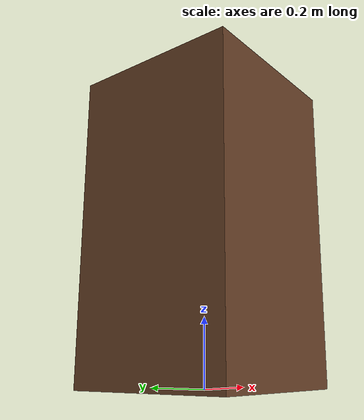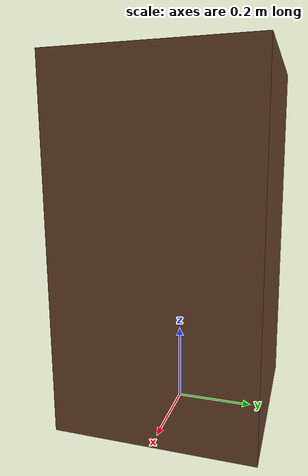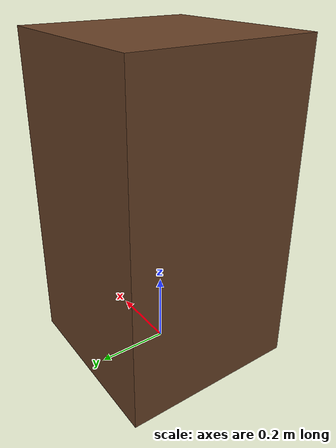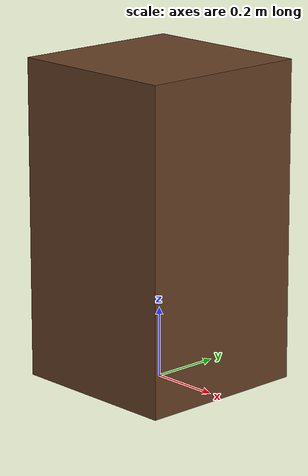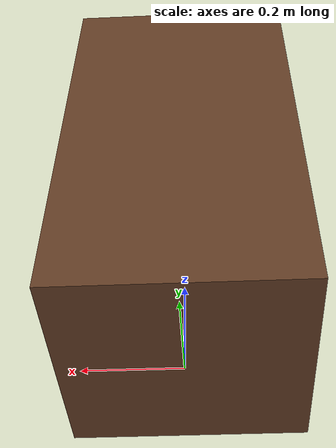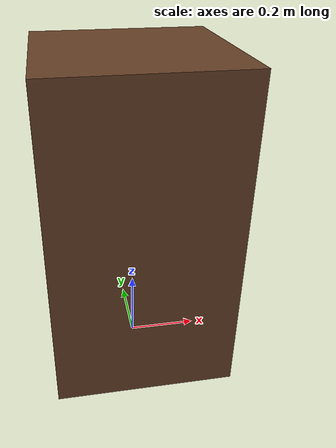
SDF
<?xml version="1.0"?>

<sdf version="1.6">
  <model name='Chair'>
    <static>true</static>
    <link name="body">
      <pose>0 0 0.45 0 0 1.5708</pose>

      <visual name="visual">
        <geometry>
          <box>
            <size>0.5 0.5 0.9</size>
          </box>
        </geometry>
        <material>
          <ambient>0.4 0.25 0.15 1</ambient>
          <diffuse>0.4 0.25 0.15 1</diffuse>
        </material>
      </visual>

      <collision name="collision">
        <geometry>
          <box>
            <size>0.5 0.5 0.9</size>
          </box>
        </geometry>
      </collision>

    </link>
  </model>
</sdf>
